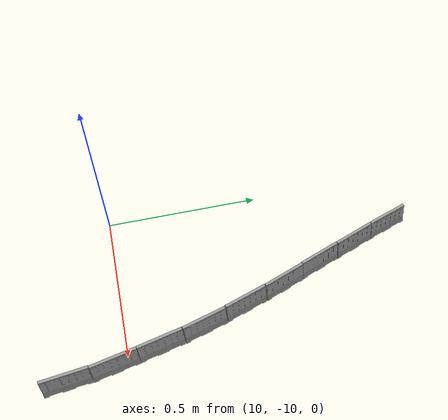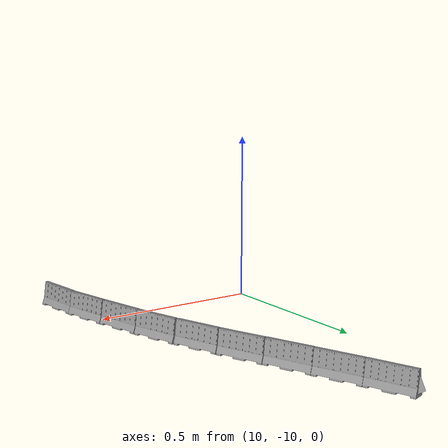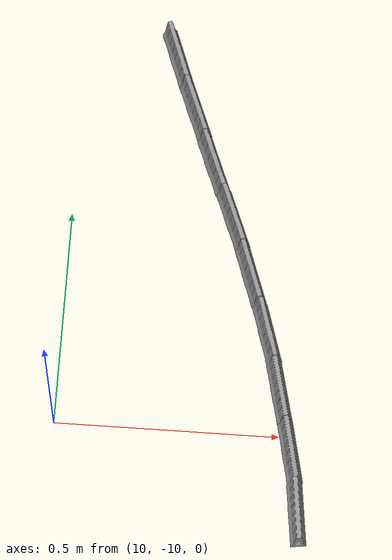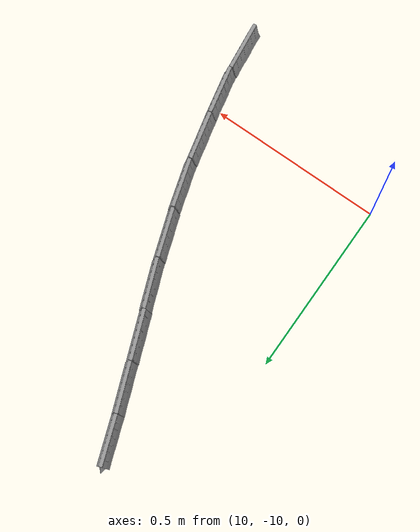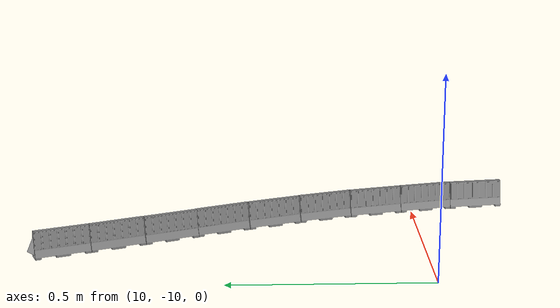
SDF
<sdf version="1.6">
 <world name="bfmc_official">
  <model name="separator_clone_clone_clone_clone_clone_clone_clone_clone_2_clone_clone_clone_clone_clone_clone_clone_clone_clone_clone_clone_clone_clone_clone_clone_clone_clone_clone_clone_clone_clone_clone_clone_clone_clone_clone_clone_clone_clone_clone_clone_clone_clone_clone">
   <link name="separator::separator::link_0">
    <inertial>
     <mass>1</mass>
     <inertia>
      <ixx>0.166667</ixx>
      <ixy>0</ixy>
      <ixz>0</ixz>
      <iyy>0.166667</iyy>
      <iyz>0</iyz>
      <izz>0.166667</izz>
     </inertia>
    </inertial>
    <visual name="visual">
     <geometry><mesh><uri>model://separator/meshes/separator.dae</uri><scale>1 1 1</scale></mesh></geometry>
     <material>
      <lighting>1</lighting>
      <script><uri>file://media/materials/scripts/gazebo.material</uri><name>Gazebo/Gray</name></script>
      <shader type="vertex"><normal_map>__default__</normal_map></shader>
      <ambient>0.3 0.3 0.3 1</ambient>
      <diffuse>0.7 0.7 0.7 1</diffuse>
      <specular>0.01 0.01 0.01 1</specular>
      <emissive>0 0 0 1</emissive>
     </material>
    </visual>
    <collision name="collision">
     <geometry><mesh><uri>model://separator/meshes/separator.dae</uri><scale>1 1 1</scale></mesh></geometry>
     <surface>
      <friction>
       <ode><mu>1</mu><mu2>1</mu2><fdir1>0 0 0</fdir1><slip1>0</slip1><slip2>0</slip2></ode>
       <torsional>
        <coefficient>1</coefficient>
        <patch_radius>0</patch_radius>
        <surface_radius>0</surface_radius>
        <use_patch_radius>1</use_patch_radius>
        <ode><slip>0</slip></ode>
       </torsional>
      </friction>
      <bounce><restitution_coefficient>0</restitution_coefficient><threshold>1e+06</threshold></bounce>
      <contact>
       <collide_without_contact>0</collide_without_contact>
       <collide_without_contact_bitmask>1</collide_without_contact_bitmask>
       <collide_bitmask>1</collide_bitmask>
       <ode>
        <soft_cfm>0</soft_cfm>
        <soft_erp>0.2</soft_erp>
        <kp>1e+13</kp>
        <kd>1</kd>
        <max_vel>0.01</max_vel>
        <min_depth>0</min_depth>
       </ode>
       <bullet>
        <split_impulse>1</split_impulse>
        <split_impulse_penetration_threshold>-0.01</split_impulse_penetration_threshold>
        <soft_cfm>0</soft_cfm>
        <soft_erp>0.2</soft_erp>
        <kp>1e+13</kp>
        <kd>1</kd>
       </bullet>
      </contact>
     </surface>
    </collision>
   </link>
   <static>1</static>
   <pose>10.5489 -10.1779 0.044642 0 0 -3.0227</pose>
  </model>
  <model name="separator_clone_clone_clone_clone_clone_clone_clone_clone_2_clone_clone_clone_clone_clone_clone_clone_clone_clone_clone_clone_clone_clone_clone_clone_clone_clone_clone_clone_clone_clone_clone_clone_clone_clone_clone_clone_clone_clone_clone_clone_clone_clone_clone_clone">
   <link name="separator::separator::link_0">
    <inertial>
     <mass>1</mass>
     <inertia>
      <ixx>0.166667</ixx>
      <ixy>0</ixy>
      <ixz>0</ixz>
      <iyy>0.166667</iyy>
      <iyz>0</iyz>
      <izz>0.166667</izz>
     </inertia>
    </inertial>
    <visual name="visual">
     <geometry><mesh><uri>model://separator/meshes/separator.dae</uri><scale>1 1 1</scale></mesh></geometry>
     <material>
      <lighting>1</lighting>
      <script><uri>file://media/materials/scripts/gazebo.material</uri><name>Gazebo/Gray</name></script>
      <shader type="vertex"><normal_map>__default__</normal_map></shader>
      <ambient>0.3 0.3 0.3 1</ambient>
      <diffuse>0.7 0.7 0.7 1</diffuse>
      <specular>0.01 0.01 0.01 1</specular>
      <emissive>0 0 0 1</emissive>
     </material>
    </visual>
    <collision name="collision">
     <geometry><mesh><uri>model://separator/meshes/separator.dae</uri><scale>1 1 1</scale></mesh></geometry>
     <surface>
      <friction>
       <ode><mu>1</mu><mu2>1</mu2><fdir1>0 0 0</fdir1><slip1>0</slip1><slip2>0</slip2></ode>
       <torsional>
        <coefficient>1</coefficient>
        <patch_radius>0</patch_radius>
        <surface_radius>0</surface_radius>
        <use_patch_radius>1</use_patch_radius>
        <ode><slip>0</slip></ode>
       </torsional>
      </friction>
      <bounce><restitution_coefficient>0</restitution_coefficient><threshold>1e+06</threshold></bounce>
      <contact>
       <collide_without_contact>0</collide_without_contact>
       <collide_without_contact_bitmask>1</collide_without_contact_bitmask>
       <collide_bitmask>1</collide_bitmask>
       <ode>
        <soft_cfm>0</soft_cfm>
        <soft_erp>0.2</soft_erp>
        <kp>1e+13</kp>
        <kd>1</kd>
        <max_vel>0.01</max_vel>
        <min_depth>0</min_depth>
       </ode>
       <bullet>
        <split_impulse>1</split_impulse>
        <split_impulse_penetration_threshold>-0.01</split_impulse_penetration_threshold>
        <soft_cfm>0</soft_cfm>
        <soft_erp>0.2</soft_erp>
        <kp>1e+13</kp>
        <kd>1</kd>
       </bullet>
      </contact>
     </surface>
    </collision>
   </link>
   <static>1</static>
   <pose>10.5276 -10.0389 0.044642 0 0 -2.9299</pose>
  </model>
  <model name="separator_clone_clone_clone_clone_clone_clone_clone_clone_2_clone_clone_clone_clone_clone_clone_clone_clone_clone_clone_clone_clone_clone_clone_clone_clone_clone_clone_clone_clone_clone_clone_clone_clone_clone_clone_clone_clone_clone_clone_clone_clone_clone_clone_clone_clone">
   <link name="separator::separator::link_0">
    <inertial>
     <mass>1</mass>
     <inertia>
      <ixx>0.166667</ixx>
      <ixy>0</ixy>
      <ixz>0</ixz>
      <iyy>0.166667</iyy>
      <iyz>0</iyz>
      <izz>0.166667</izz>
     </inertia>
    </inertial>
    <visual name="visual">
     <geometry><mesh><uri>model://separator/meshes/separator.dae</uri><scale>1 1 1</scale></mesh></geometry>
     <material>
      <lighting>1</lighting>
      <script><uri>file://media/materials/scripts/gazebo.material</uri><name>Gazebo/Gray</name></script>
      <shader type="vertex"><normal_map>__default__</normal_map></shader>
      <ambient>0.3 0.3 0.3 1</ambient>
      <diffuse>0.7 0.7 0.7 1</diffuse>
      <specular>0.01 0.01 0.01 1</specular>
      <emissive>0 0 0 1</emissive>
     </material>
    </visual>
    <collision name="collision">
     <geometry><mesh><uri>model://separator/meshes/separator.dae</uri><scale>1 1 1</scale></mesh></geometry>
     <surface>
      <friction>
       <ode><mu>1</mu><mu2>1</mu2><fdir1>0 0 0</fdir1><slip1>0</slip1><slip2>0</slip2></ode>
       <torsional>
        <coefficient>1</coefficient>
        <patch_radius>0</patch_radius>
        <surface_radius>0</surface_radius>
        <use_patch_radius>1</use_patch_radius>
        <ode><slip>0</slip></ode>
       </torsional>
      </friction>
      <bounce><restitution_coefficient>0</restitution_coefficient><threshold>1e+06</threshold></bounce>
      <contact>
       <collide_without_contact>0</collide_without_contact>
       <collide_without_contact_bitmask>1</collide_without_contact_bitmask>
       <collide_bitmask>1</collide_bitmask>
       <ode>
        <soft_cfm>0</soft_cfm>
        <soft_erp>0.2</soft_erp>
        <kp>1e+13</kp>
        <kd>1</kd>
        <max_vel>0.01</max_vel>
        <min_depth>0</min_depth>
       </ode>
       <bullet>
        <split_impulse>1</split_impulse>
        <split_impulse_penetration_threshold>-0.01</split_impulse_penetration_threshold>
        <soft_cfm>0</soft_cfm>
        <soft_erp>0.2</soft_erp>
        <kp>1e+13</kp>
        <kd>1</kd>
       </bullet>
      </contact>
     </surface>
    </collision>
   </link>
   <static>1</static>
   <pose>10.4963 -9.9013 0.044642 0 0 -2.91058</pose>
  </model>
  <model name="separator_clone_clone_clone_clone_clone_clone_clone_clone_2_clone_clone_clone_clone_clone_clone_clone_clone_clone_clone_clone_clone_clone_clone_clone_clone_clone_clone_clone_clone_clone_clone_clone_clone_clone_clone_clone_clone_clone_clone_clone_clone_clone_clone_clone_clone_clone">
   <link name="separator::separator::link_0">
    <inertial>
     <mass>1</mass>
     <inertia>
      <ixx>0.166667</ixx>
      <ixy>0</ixy>
      <ixz>0</ixz>
      <iyy>0.166667</iyy>
      <iyz>0</iyz>
      <izz>0.166667</izz>
     </inertia>
    </inertial>
    <visual name="visual">
     <geometry><mesh><uri>model://separator/meshes/separator.dae</uri><scale>1 1 1</scale></mesh></geometry>
     <material>
      <lighting>1</lighting>
      <script><uri>file://media/materials/scripts/gazebo.material</uri><name>Gazebo/Gray</name></script>
      <shader type="vertex"><normal_map>__default__</normal_map></shader>
      <ambient>0.3 0.3 0.3 1</ambient>
      <diffuse>0.7 0.7 0.7 1</diffuse>
      <specular>0.01 0.01 0.01 1</specular>
      <emissive>0 0 0 1</emissive>
     </material>
    </visual>
    <collision name="collision">
     <geometry><mesh><uri>model://separator/meshes/separator.dae</uri><scale>1 1 1</scale></mesh></geometry>
     <surface>
      <friction>
       <ode><mu>1</mu><mu2>1</mu2><fdir1>0 0 0</fdir1><slip1>0</slip1><slip2>0</slip2></ode>
       <torsional>
        <coefficient>1</coefficient>
        <patch_radius>0</patch_radius>
        <surface_radius>0</surface_radius>
        <use_patch_radius>1</use_patch_radius>
        <ode><slip>0</slip></ode>
       </torsional>
      </friction>
      <bounce><restitution_coefficient>0</restitution_coefficient><threshold>1e+06</threshold></bounce>
      <contact>
       <collide_without_contact>0</collide_without_contact>
       <collide_without_contact_bitmask>1</collide_without_contact_bitmask>
       <collide_bitmask>1</collide_bitmask>
       <ode>
        <soft_cfm>0</soft_cfm>
        <soft_erp>0.2</soft_erp>
        <kp>1e+13</kp>
        <kd>1</kd>
        <max_vel>0.01</max_vel>
        <min_depth>0</min_depth>
       </ode>
       <bullet>
        <split_impulse>1</split_impulse>
        <split_impulse_penetration_threshold>-0.01</split_impulse_penetration_threshold>
        <soft_cfm>0</soft_cfm>
        <soft_erp>0.2</soft_erp>
        <kp>1e+13</kp>
        <kd>1</kd>
       </bullet>
      </contact>
     </surface>
    </collision>
   </link>
   <static>1</static>
   <pose>10.4607 -9.76405 0.044642 0 0 -2.84827</pose>
  </model>
  <model name="separator_clone_clone_clone_clone_clone_clone_clone_clone_2_clone_clone_clone_clone_clone_clone_clone_clone_clone_clone_clone_clone_clone_clone_clone_clone_clone_clone_clone_clone_clone_clone_clone_clone_clone_clone_clone_clone_clone_clone_clone_clone_clone_clone_clone_clone_clone_clone">
   <link name="separator::separator::link_0">
    <inertial>
     <mass>1</mass>
     <inertia>
      <ixx>0.166667</ixx>
      <ixy>0</ixy>
      <ixz>0</ixz>
      <iyy>0.166667</iyy>
      <iyz>0</iyz>
      <izz>0.166667</izz>
     </inertia>
    </inertial>
    <visual name="visual">
     <geometry><mesh><uri>model://separator/meshes/separator.dae</uri><scale>1 1 1</scale></mesh></geometry>
     <material>
      <lighting>1</lighting>
      <script><uri>file://media/materials/scripts/gazebo.material</uri><name>Gazebo/Gray</name></script>
      <shader type="vertex"><normal_map>__default__</normal_map></shader>
      <ambient>0.3 0.3 0.3 1</ambient>
      <diffuse>0.7 0.7 0.7 1</diffuse>
      <specular>0.01 0.01 0.01 1</specular>
      <emissive>0 0 0 1</emissive>
     </material>
    </visual>
    <collision name="collision">
     <geometry><mesh><uri>model://separator/meshes/separator.dae</uri><scale>1 1 1</scale></mesh></geometry>
     <surface>
      <friction>
       <ode><mu>1</mu><mu2>1</mu2><fdir1>0 0 0</fdir1><slip1>0</slip1><slip2>0</slip2></ode>
       <torsional>
        <coefficient>1</coefficient>
        <patch_radius>0</patch_radius>
        <surface_radius>0</surface_radius>
        <use_patch_radius>1</use_patch_radius>
        <ode><slip>0</slip></ode>
       </torsional>
      </friction>
      <bounce><restitution_coefficient>0</restitution_coefficient><threshold>1e+06</threshold></bounce>
      <contact>
       <collide_without_contact>0</collide_without_contact>
       <collide_without_contact_bitmask>1</collide_without_contact_bitmask>
       <collide_bitmask>1</collide_bitmask>
       <ode>
        <soft_cfm>0</soft_cfm>
        <soft_erp>0.2</soft_erp>
        <kp>1e+13</kp>
        <kd>1</kd>
        <max_vel>0.01</max_vel>
        <min_depth>0</min_depth>
       </ode>
       <bullet>
        <split_impulse>1</split_impulse>
        <split_impulse_penetration_threshold>-0.01</split_impulse_penetration_threshold>
        <soft_cfm>0</soft_cfm>
        <soft_erp>0.2</soft_erp>
        <kp>1e+13</kp>
        <kd>1</kd>
       </bullet>
      </contact>
     </surface>
    </collision>
   </link>
   <static>1</static>
   <pose>10.4157 -9.62846 0.044642 0 0 -2.80879</pose>
  </model>
  <model name="separator_clone_clone_clone_clone_clone_clone_clone_clone_2_clone_clone_clone_clone_clone_clone_clone_clone_clone_clone_clone_clone_clone_clone_clone_clone_clone_clone_clone_clone_clone_clone_clone_clone_clone_clone_clone_clone_clone_clone_clone_clone_clone_clone_clone_clone_clone_clone_clone">
   <link name="separator::separator::link_0">
    <inertial>
     <mass>1</mass>
     <inertia>
      <ixx>0.166667</ixx>
      <ixy>0</ixy>
      <ixz>0</ixz>
      <iyy>0.166667</iyy>
      <iyz>0</iyz>
      <izz>0.166667</izz>
     </inertia>
    </inertial>
    <visual name="visual">
     <geometry><mesh><uri>model://separator/meshes/separator.dae</uri><scale>1 1 1</scale></mesh></geometry>
     <material>
      <lighting>1</lighting>
      <script><uri>file://media/materials/scripts/gazebo.material</uri><name>Gazebo/Gray</name></script>
      <shader type="vertex"><normal_map>__default__</normal_map></shader>
      <ambient>0.3 0.3 0.3 1</ambient>
      <diffuse>0.7 0.7 0.7 1</diffuse>
      <specular>0.01 0.01 0.01 1</specular>
      <emissive>0 0 0 1</emissive>
     </material>
    </visual>
    <collision name="collision">
     <geometry><mesh><uri>model://separator/meshes/separator.dae</uri><scale>1 1 1</scale></mesh></geometry>
     <surface>
      <friction>
       <ode><mu>1</mu><mu2>1</mu2><fdir1>0 0 0</fdir1><slip1>0</slip1><slip2>0</slip2></ode>
       <torsional>
        <coefficient>1</coefficient>
        <patch_radius>0</patch_radius>
        <surface_radius>0</surface_radius>
        <use_patch_radius>1</use_patch_radius>
        <ode><slip>0</slip></ode>
       </torsional>
      </friction>
      <bounce><restitution_coefficient>0</restitution_coefficient><threshold>1e+06</threshold></bounce>
      <contact>
       <collide_without_contact>0</collide_without_contact>
       <collide_without_contact_bitmask>1</collide_without_contact_bitmask>
       <collide_bitmask>1</collide_bitmask>
       <ode>
        <soft_cfm>0</soft_cfm>
        <soft_erp>0.2</soft_erp>
        <kp>1e+13</kp>
        <kd>1</kd>
        <max_vel>0.01</max_vel>
        <min_depth>0</min_depth>
       </ode>
       <bullet>
        <split_impulse>1</split_impulse>
        <split_impulse_penetration_threshold>-0.01</split_impulse_penetration_threshold>
        <soft_cfm>0</soft_cfm>
        <soft_erp>0.2</soft_erp>
        <kp>1e+13</kp>
        <kd>1</kd>
       </bullet>
      </contact>
     </surface>
    </collision>
   </link>
   <static>1</static>
   <pose>10.3677 -9.49477 0.044642 0 0 -2.77073</pose>
  </model>
  <model name="separator_clone_clone_clone_clone_clone_clone_clone_clone_2_clone_clone_clone_clone_clone_clone_clone_clone_clone_clone_clone_clone_clone_clone_clone_clone_clone_clone_clone_clone_clone_clone_clone_clone_clone_clone_clone_clone_clone_clone_clone_clone_clone_clone_clone_clone_clone_clone_clone_clone">
   <link name="separator::separator::link_0">
    <inertial>
     <mass>1</mass>
     <inertia>
      <ixx>0.166667</ixx>
      <ixy>0</ixy>
      <ixz>0</ixz>
      <iyy>0.166667</iyy>
      <iyz>0</iyz>
      <izz>0.166667</izz>
     </inertia>
    </inertial>
    <visual name="visual">
     <geometry><mesh><uri>model://separator/meshes/separator.dae</uri><scale>1 1 1</scale></mesh></geometry>
     <material>
      <lighting>1</lighting>
      <script><uri>file://media/materials/scripts/gazebo.material</uri><name>Gazebo/Gray</name></script>
      <shader type="vertex"><normal_map>__default__</normal_map></shader>
      <ambient>0.3 0.3 0.3 1</ambient>
      <diffuse>0.7 0.7 0.7 1</diffuse>
      <specular>0.01 0.01 0.01 1</specular>
      <emissive>0 0 0 1</emissive>
     </material>
    </visual>
    <collision name="collision">
     <geometry><mesh><uri>model://separator/meshes/separator.dae</uri><scale>1 1 1</scale></mesh></geometry>
     <surface>
      <friction>
       <ode><mu>1</mu><mu2>1</mu2><fdir1>0 0 0</fdir1><slip1>0</slip1><slip2>0</slip2></ode>
       <torsional>
        <coefficient>1</coefficient>
        <patch_radius>0</patch_radius>
        <surface_radius>0</surface_radius>
        <use_patch_radius>1</use_patch_radius>
        <ode><slip>0</slip></ode>
       </torsional>
      </friction>
      <bounce><restitution_coefficient>0</restitution_coefficient><threshold>1e+06</threshold></bounce>
      <contact>
       <collide_without_contact>0</collide_without_contact>
       <collide_without_contact_bitmask>1</collide_without_contact_bitmask>
       <collide_bitmask>1</collide_bitmask>
       <ode>
        <soft_cfm>0</soft_cfm>
        <soft_erp>0.2</soft_erp>
        <kp>1e+13</kp>
        <kd>1</kd>
        <max_vel>0.01</max_vel>
        <min_depth>0</min_depth>
       </ode>
       <bullet>
        <split_impulse>1</split_impulse>
        <split_impulse_penetration_threshold>-0.01</split_impulse_penetration_threshold>
        <soft_cfm>0</soft_cfm>
        <soft_erp>0.2</soft_erp>
        <kp>1e+13</kp>
        <kd>1</kd>
       </bullet>
      </contact>
     </surface>
    </collision>
   </link>
   <static>1</static>
   <pose>10.3152 -9.3641 0.044642 0 0 -2.77073</pose>
  </model>
  <model name="separator_clone_clone_clone_clone_clone_clone_clone_clone_2_clone_clone_clone_clone_clone_clone_clone_clone_clone_clone_clone_clone_clone_clone_clone_clone_clone_clone_clone_clone_clone_clone_clone_clone_clone_clone_clone_clone_clone_clone_clone_clone_clone_clone_clone_clone_clone_clone_clone_clone_clone">
   <link name="separator::separator::link_0">
    <inertial>
     <mass>1</mass>
     <inertia>
      <ixx>0.166667</ixx>
      <ixy>0</ixy>
      <ixz>0</ixz>
      <iyy>0.166667</iyy>
      <iyz>0</iyz>
      <izz>0.166667</izz>
     </inertia>
    </inertial>
    <visual name="visual">
     <geometry><mesh><uri>model://separator/meshes/separator.dae</uri><scale>1 1 1</scale></mesh></geometry>
     <material>
      <lighting>1</lighting>
      <script><uri>file://media/materials/scripts/gazebo.material</uri><name>Gazebo/Gray</name></script>
      <shader type="vertex"><normal_map>__default__</normal_map></shader>
      <ambient>0.3 0.3 0.3 1</ambient>
      <diffuse>0.7 0.7 0.7 1</diffuse>
      <specular>0.01 0.01 0.01 1</specular>
      <emissive>0 0 0 1</emissive>
     </material>
    </visual>
    <collision name="collision">
     <geometry><mesh><uri>model://separator/meshes/separator.dae</uri><scale>1 1 1</scale></mesh></geometry>
     <surface>
      <friction>
       <ode><mu>1</mu><mu2>1</mu2><fdir1>0 0 0</fdir1><slip1>0</slip1><slip2>0</slip2></ode>
       <torsional>
        <coefficient>1</coefficient>
        <patch_radius>0</patch_radius>
        <surface_radius>0</surface_radius>
        <use_patch_radius>1</use_patch_radius>
        <ode><slip>0</slip></ode>
       </torsional>
      </friction>
      <bounce><restitution_coefficient>0</restitution_coefficient><threshold>1e+06</threshold></bounce>
      <contact>
       <collide_without_contact>0</collide_without_contact>
       <collide_without_contact_bitmask>1</collide_without_contact_bitmask>
       <collide_bitmask>1</collide_bitmask>
       <ode>
        <soft_cfm>0</soft_cfm>
        <soft_erp>0.2</soft_erp>
        <kp>1e+13</kp>
        <kd>1</kd>
        <max_vel>0.01</max_vel>
        <min_depth>0</min_depth>
       </ode>
       <bullet>
        <split_impulse>1</split_impulse>
        <split_impulse_penetration_threshold>-0.01</split_impulse_penetration_threshold>
        <soft_cfm>0</soft_cfm>
        <soft_erp>0.2</soft_erp>
        <kp>1e+13</kp>
        <kd>1</kd>
       </bullet>
      </contact>
     </surface>
    </collision>
   </link>
   <static>1</static>
   <pose>10.2649 -9.23213 0.044642 0 0 -2.77073</pose>
  </model>
  <model name="separator_clone_clone_clone_clone_clone_clone_clone_clone_2_clone_clone_clone_clone_clone_clone_clone_clone_clone_clone_clone_clone_clone_clone_clone_clone_clone_clone_clone_clone_clone_clone_clone_clone_clone_clone_clone_clone_clone_clone_clone_clone_clone_clone_clone_clone_clone_clone_clone_clone_clone_0">
   <link name="separator::separator::link_0">
    <inertial>
     <mass>1</mass>
     <inertia>
      <ixx>0.166667</ixx>
      <ixy>0</ixy>
      <ixz>0</ixz>
      <iyy>0.166667</iyy>
      <iyz>0</iyz>
      <izz>0.166667</izz>
     </inertia>
    </inertial>
    <visual name="visual">
     <geometry><mesh><uri>model://separator/meshes/separator.dae</uri><scale>1 1 1</scale></mesh></geometry>
     <material>
      <lighting>1</lighting>
      <script><uri>file://media/materials/scripts/gazebo.material</uri><name>Gazebo/Gray</name></script>
      <shader type="vertex"><normal_map>__default__</normal_map></shader>
      <ambient>0.3 0.3 0.3 1</ambient>
      <diffuse>0.7 0.7 0.7 1</diffuse>
      <specular>0.01 0.01 0.01 1</specular>
      <emissive>0 0 0 1</emissive>
     </material>
    </visual>
    <collision name="collision">
     <geometry><mesh><uri>model://separator/meshes/separator.dae</uri><scale>1 1 1</scale></mesh></geometry>
     <surface>
      <friction>
       <ode><mu>1</mu><mu2>1</mu2><fdir1>0 0 0</fdir1><slip1>0</slip1><slip2>0</slip2></ode>
       <torsional>
        <coefficient>1</coefficient>
        <patch_radius>0</patch_radius>
        <surface_radius>0</surface_radius>
        <use_patch_radius>1</use_patch_radius>
        <ode><slip>0</slip></ode>
       </torsional>
      </friction>
      <bounce><restitution_coefficient>0</restitution_coefficient><threshold>1e+06</threshold></bounce>
      <contact>
       <collide_without_contact>0</collide_without_contact>
       <collide_without_contact_bitmask>1</collide_without_contact_bitmask>
       <collide_bitmask>1</collide_bitmask>
       <ode>
        <soft_cfm>0</soft_cfm>
        <soft_erp>0.2</soft_erp>
        <kp>1e+13</kp>
        <kd>1</kd>
        <max_vel>0.01</max_vel>
        <min_depth>0</min_depth>
       </ode>
       <bullet>
        <split_impulse>1</split_impulse>
        <split_impulse_penetration_threshold>-0.01</split_impulse_penetration_threshold>
        <soft_cfm>0</soft_cfm>
        <soft_erp>0.2</soft_erp>
        <kp>1e+13</kp>
        <kd>1</kd>
       </bullet>
      </contact>
     </surface>
    </collision>
   </link>
   <static>1</static>
   <pose>10.2153 -9.10039 0.044642 0 0 -2.79345</pose>
  </model>
 </world>
</sdf>
